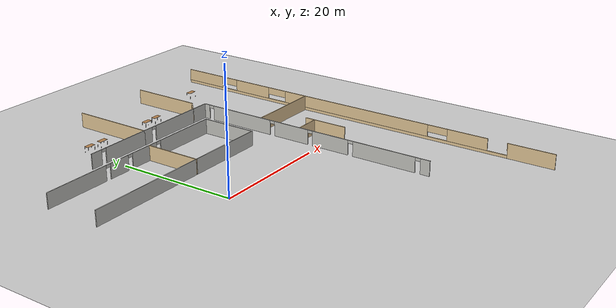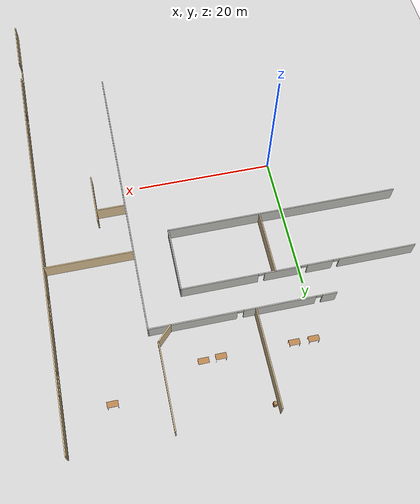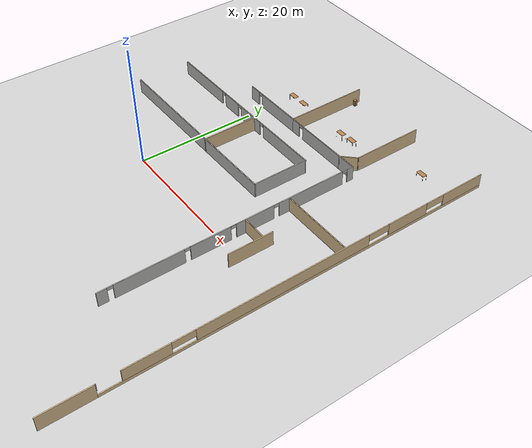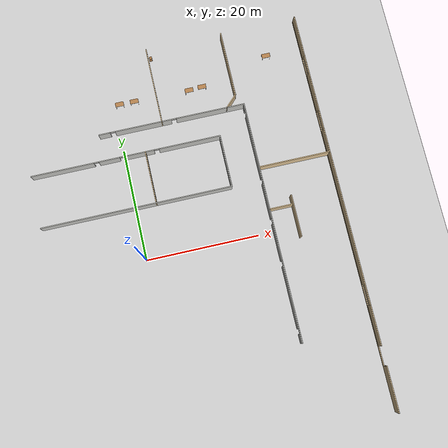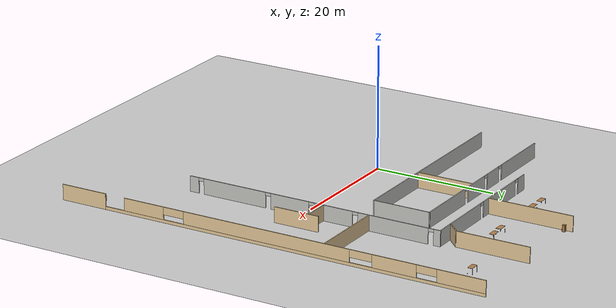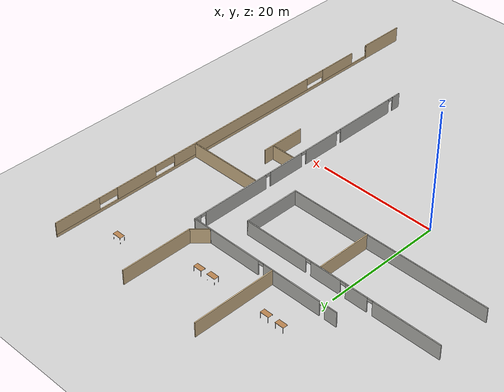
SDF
<sdf version="1.6">
 <world name="default">
  <model name="ground_plane">
   <static>1</static>
   <link name="link">
    <collision name="collision">
     <geometry><plane><normal>0 0 1</normal><size>100 100</size></plane></geometry>
     <surface><friction><ode><mu>100</mu><mu2>50</mu2></ode></friction></surface>
    </collision>
    <visual name="visual">
     <cast_shadows>0</cast_shadows>
     <geometry><plane><normal>0 0 1</normal><size>100 100</size></plane></geometry>
     <material>
      <script><uri>file://media/materials/scripts/gazebo.material</uri><name>Gazebo/Grey</name></script>
     </material>
    </visual>
   </link>
  </model>
  <model name="Building">
   <pose>0.1606 -0.442 0 0 -0 0</pose>
   <link name="Wall_103">
    <collision name="Wall_103_Collision">
     <geometry><box><size>4.25 0.15 2.5</size></box></geometry>
     <pose>0 0 1.25 0 -0 0</pose>
    </collision>
    <visual name="Wall_103_Visual">
     <pose>0 0 1.25 0 -0 0</pose>
     <geometry><box><size>4.25 0.15 2.5</size></box></geometry>
     <material>
      <script><uri>file://media/materials/scripts/gazebo.material</uri><name>Gazebo/Grey</name></script>
      <ambient>0.921569 0.807843 0.615686 1</ambient>
     </material>
     <meta><layer>0</layer></meta>
    </visual>
    <pose>24.6252 4.22124 0 0 -0 0</pose>
   </link>
   <link name="Wall_107">
    <collision name="Wall_107_Collision">
     <geometry><box><size>7.5 0.15 2.5</size></box></geometry>
     <pose>0 0 1.25 0 -0 0</pose>
    </collision>
    <visual name="Wall_107_Visual">
     <pose>0 0 1.25 0 -0 0</pose>
     <geometry><box><size>7.5 0.15 2.5</size></box></geometry>
     <material>
      <script><uri>file://media/materials/scripts/gazebo.material</uri><name>Gazebo/Grey</name></script>
      <ambient>0.921569 0.807843 0.615686 1</ambient>
     </material>
     <meta><layer>0</layer></meta>
    </visual>
    <pose>26.8012 2.14732 0 0 0 -1.5708</pose>
   </link>
   <link name="Wall_15">
    <pose>35.2955 2.175 0 0 -0 1.5708</pose>
    <visual name="Wall_15_Visual_0">
     <pose>-31.881 0 1.25 0 -0 0</pose>
     <geometry><box><size>7.73799 0.15 2.5</size></box></geometry>
     <material>
      <script><uri>file://media/materials/scripts/gazebo.material</uri><name>Gazebo/Grey</name></script>
      <ambient>0.921569 0.807843 0.615686 1</ambient>
     </material>
     <meta><layer>0</layer></meta>
    </visual>
    <collision name="Wall_15_Collision_0">
     <geometry><box><size>7.73799 0.15 2.5</size></box></geometry>
     <pose>-31.881 0 1.25 0 -0 0</pose>
    </collision>
    <visual name="Wall_15_Visual_1">
     <pose>3.869 0 0.25 0 -0 0</pose>
     <geometry><box><size>63.762 0.15 0.5</size></box></geometry>
     <material>
      <script><uri>file://media/materials/scripts/gazebo.material</uri><name>Gazebo/Grey</name></script>
      <ambient>0.921569 0.807843 0.615686 1</ambient>
     </material>
     <meta><layer>0</layer></meta>
    </visual>
    <collision name="Wall_15_Collision_1">
     <geometry><box><size>63.762 0.15 0.5</size></box></geometry>
     <pose>3.869 0 0.25 0 -0 0</pose>
    </collision>
    <visual name="Wall_15_Visual_2">
     <pose>-21.1676 0 1.5 0 -0 0</pose>
     <geometry><box><size>6.97218 0.15 2</size></box></geometry>
     <material>
      <script><uri>file://media/materials/scripts/gazebo.material</uri><name>Gazebo/Grey</name></script>
      <ambient>0.921569 0.807843 0.615686 1</ambient>
     </material>
     <meta><layer>0</layer></meta>
    </visual>
    <collision name="Wall_15_Collision_2">
     <geometry><box><size>6.97218 0.15 2</size></box></geometry>
     <pose>-21.1676 0 1.5 0 -0 0</pose>
    </collision>
    <visual name="Wall_15_Visual_3">
     <pose>-0.106032 0 1.5 0 -0 0</pose>
     <geometry><box><size>28.1209 0.15 2</size></box></geometry>
     <material>
      <script><uri>file://media/materials/scripts/gazebo.material</uri><name>Gazebo/Grey</name></script>
      <ambient>0.921569 0.807843 0.615686 1</ambient>
     </material>
     <meta><layer>0</layer></meta>
    </visual>
    <collision name="Wall_15_Collision_3">
     <geometry><box><size>28.1209 0.15 2</size></box></geometry>
     <pose>-0.106032 0 1.5 0 -0 0</pose>
    </collision>
    <visual name="Wall_15_Visual_4">
     <pose>21.1713 0 1.5 0 -0 0</pose>
     <geometry><box><size>7.19064 0.15 2</size></box></geometry>
     <material>
      <script><uri>file://media/materials/scripts/gazebo.material</uri><name>Gazebo/Grey</name></script>
      <ambient>0.921569 0.807843 0.615686 1</ambient>
     </material>
     <meta><layer>0</layer></meta>
    </visual>
    <collision name="Wall_15_Collision_4">
     <geometry><box><size>7.19064 0.15 2</size></box></geometry>
     <pose>21.1713 0 1.5 0 -0 0</pose>
    </collision>
    <visual name="Wall_15_Visual_5">
     <pose>31.8827 0 1.5 0 -0 0</pose>
     <geometry><box><size>7.73457 0.15 2</size></box></geometry>
     <material>
      <script><uri>file://media/materials/scripts/gazebo.material</uri><name>Gazebo/Grey</name></script>
      <ambient>0.921569 0.807843 0.615686 1</ambient>
     </material>
     <meta><layer>0</layer></meta>
    </visual>
    <collision name="Wall_15_Collision_5">
     <geometry><box><size>7.73457 0.15 2</size></box></geometry>
     <pose>31.8827 0 1.5 0 -0 0</pose>
    </collision>
    <visual name="Wall_15_Visual_6">
     <pose>-27.9687 0 1.9 0 -0 0</pose>
     <geometry><box><size>0.086667 0.15 1.2</size></box></geometry>
     <material>
      <script><uri>file://media/materials/scripts/gazebo.material</uri><name>Gazebo/Grey</name></script>
      <ambient>0.921569 0.807843 0.615686 1</ambient>
     </material>
     <meta><layer>0</layer></meta>
    </visual>
    <collision name="Wall_15_Collision_6">
     <geometry><box><size>0.086667 0.15 1.2</size></box></geometry>
     <pose>-27.9687 0 1.9 0 -0 0</pose>
    </collision>
    <visual name="Wall_15_Visual_7">
     <pose>-15.924 0 1.9 0 -0 0</pose>
     <geometry><box><size>3.51504 0.15 1.2</size></box></geometry>
     <material>
      <script><uri>file://media/materials/scripts/gazebo.material</uri><name>Gazebo/Grey</name></script>
      <ambient>0.921569 0.807843 0.615686 1</ambient>
     </material>
     <meta><layer>0</layer></meta>
    </visual>
    <collision name="Wall_15_Collision_7">
     <geometry><box><size>3.51504 0.15 1.2</size></box></geometry>
     <pose>-15.924 0 1.9 0 -0 0</pose>
    </collision>
    <visual name="Wall_15_Visual_8">
     <pose>15.7652 0 1.9 0 -0 0</pose>
     <geometry><box><size>3.62151 0.15 1.2</size></box></geometry>
     <material>
      <script><uri>file://media/materials/scripts/gazebo.material</uri><name>Gazebo/Grey</name></script>
      <ambient>0.921569 0.807843 0.615686 1</ambient>
     </material>
     <meta><layer>0</layer></meta>
    </visual>
    <collision name="Wall_15_Collision_8">
     <geometry><box><size>3.62151 0.15 1.2</size></box></geometry>
     <pose>15.7652 0 1.9 0 -0 0</pose>
    </collision>
    <visual name="Wall_15_Visual_9">
     <pose>26.391 0 1.9 0 -0 0</pose>
     <geometry><box><size>3.24886 0.15 1.2</size></box></geometry>
     <material>
      <script><uri>file://media/materials/scripts/gazebo.material</uri><name>Gazebo/Grey</name></script>
      <ambient>0.921569 0.807843 0.615686 1</ambient>
     </material>
     <meta><layer>0</layer></meta>
    </visual>
    <collision name="Wall_15_Collision_9">
     <geometry><box><size>3.24886 0.15 1.2</size></box></geometry>
     <pose>26.391 0 1.9 0 -0 0</pose>
    </collision>
   </link>
   <link name="Wall_27">
    <pose>1.91161 23.7463 0 0 -0 0</pose>
    <visual name="Wall_27_Visual_0">
     <pose>-4.71792 0 1.25 0 -0 0</pose>
     <geometry><box><size>2.06417 0.15 2.5</size></box></geometry>
     <material>
      <script><uri>file://media/materials/scripts/gazebo.material</uri><name>Gazebo/CeilingTiled</name></script>
      <ambient>1 1 1 1</ambient>
     </material>
     <meta><layer>0</layer></meta>
    </visual>
    <collision name="Wall_27_Collision_0">
     <geometry><box><size>2.06417 0.15 2.5</size></box></geometry>
     <pose>-4.71792 0 1.25 0 -0 0</pose>
    </collision>
    <visual name="Wall_27_Visual_1">
     <pose>1.48208 0 1.25 0 -0 0</pose>
     <geometry><box><size>8.53583 0.15 2.5</size></box></geometry>
     <material>
      <script><uri>file://media/materials/scripts/gazebo.material</uri><name>Gazebo/CeilingTiled</name></script>
      <ambient>1 1 1 1</ambient>
     </material>
     <meta><layer>0</layer></meta>
    </visual>
    <collision name="Wall_27_Collision_1">
     <geometry><box><size>8.53583 0.15 2.5</size></box></geometry>
     <pose>1.48208 0 1.25 0 -0 0</pose>
    </collision>
    <visual name="Wall_27_Visual_2">
     <pose>-3.23583 0 2.25 0 -0 0</pose>
     <geometry><box><size>0.9 0.15 0.5</size></box></geometry>
     <material>
      <script><uri>file://media/materials/scripts/gazebo.material</uri><name>Gazebo/CeilingTiled</name></script>
      <ambient>1 1 1 1</ambient>
     </material>
     <meta><layer>0</layer></meta>
    </visual>
    <collision name="Wall_27_Collision_2">
     <geometry><box><size>0.9 0.15 0.5</size></box></geometry>
     <pose>-3.23583 0 2.25 0 -0 0</pose>
    </collision>
   </link>
   <link name="Wall_28">
    <collision name="Wall_28_Collision">
     <geometry><box><size>14 0.15 2.5</size></box></geometry>
     <pose>0 0 1.25 0 -0 0</pose>
    </collision>
    <visual name="Wall_28_Visual">
     <pose>0 0 1.25 0 -0 0</pose>
     <geometry><box><size>14 0.15 2.5</size></box></geometry>
     <material>
      <script><uri>file://media/materials/scripts/gazebo.material</uri><name>Gazebo/Grey</name></script>
      <ambient>0.921569 0.807843 0.615686 1</ambient>
     </material>
     <meta><layer>0</layer></meta>
    </visual>
    <pose>7.58661 30.6713 0 0 -0 1.5708</pose>
   </link>
   <link name="Wall_30">
    <pose>13.5116 23.7463 0 0 -0 0</pose>
    <visual name="Wall_30_Visual_0">
     <pose>-5.09853 0 1.25 0 -0 0</pose>
     <geometry><box><size>1.80295 0.15 2.5</size></box></geometry>
     <material>
      <script><uri>file://media/materials/scripts/gazebo.material</uri><name>Gazebo/CeilingTiled</name></script>
      <ambient>1 1 1 1</ambient>
     </material>
     <meta><layer>0</layer></meta>
    </visual>
    <collision name="Wall_30_Collision_0">
     <geometry><box><size>1.80295 0.15 2.5</size></box></geometry>
     <pose>-5.09853 0 1.25 0 -0 0</pose>
    </collision>
    <visual name="Wall_30_Visual_1">
     <pose>1.35147 0 1.25 0 -0 0</pose>
     <geometry><box><size>9.29705 0.15 2.5</size></box></geometry>
     <material>
      <script><uri>file://media/materials/scripts/gazebo.material</uri><name>Gazebo/CeilingTiled</name></script>
      <ambient>1 1 1 1</ambient>
     </material>
     <meta><layer>0</layer></meta>
    </visual>
    <collision name="Wall_30_Collision_1">
     <geometry><box><size>9.29705 0.15 2.5</size></box></geometry>
     <pose>1.35147 0 1.25 0 -0 0</pose>
    </collision>
    <visual name="Wall_30_Visual_2">
     <pose>-3.74705 0 2.25 0 -0 0</pose>
     <geometry><box><size>0.9 0.15 0.5</size></box></geometry>
     <material>
      <script><uri>file://media/materials/scripts/gazebo.material</uri><name>Gazebo/CeilingTiled</name></script>
      <ambient>1 1 1 1</ambient>
     </material>
     <meta><layer>0</layer></meta>
    </visual>
    <collision name="Wall_30_Collision_2">
     <geometry><box><size>0.9 0.15 0.5</size></box></geometry>
     <pose>-3.74705 0 2.25 0 -0 0</pose>
    </collision>
   </link>
   <link name="Wall_31">
    <collision name="Wall_31_Collision">
     <geometry><box><size>3 0.15 2.5</size></box></geometry>
     <pose>0 0 1.25 0 -0 0</pose>
    </collision>
    <visual name="Wall_31_Visual">
     <pose>0 0 1.25 0 -0 0</pose>
     <geometry><box><size>3 0.15 2.5</size></box></geometry>
     <material>
      <script><uri>file://media/materials/scripts/gazebo.material</uri><name>Gazebo/Grey</name></script>
      <ambient>0.921569 0.807843 0.615686 1</ambient>
     </material>
     <meta><layer>0</layer></meta>
    </visual>
    <pose>20.4442 24.754 0 0 -0 0.785398</pose>
   </link>
   <link name="Wall_32">
    <collision name="Wall_32_Collision">
     <geometry><box><size>12 0.15 2.5</size></box></geometry>
     <pose>0 0 1.25 0 -0 0</pose>
    </collision>
    <visual name="Wall_32_Visual">
     <pose>0 0 1.25 0 -0 0</pose>
     <geometry><box><size>12 0.15 2.5</size></box></geometry>
     <material>
      <script><uri>file://media/materials/scripts/gazebo.material</uri><name>Gazebo/Grey</name></script>
      <ambient>0.921569 0.807843 0.615686 1</ambient>
     </material>
     <meta><layer>0</layer></meta>
    </visual>
    <pose>21.4519 31.6866 0 0 -0 1.5708</pose>
   </link>
   <link name="Wall_37">
    <collision name="Wall_37_Collision">
     <geometry><box><size>3.25 0.15 2.5</size></box></geometry>
     <pose>0 0 1.25 0 -0 0</pose>
    </collision>
    <visual name="Wall_37_Visual">
     <pose>0 0 1.25 0 -0 0</pose>
     <geometry><box><size>3.25 0.15 2.5</size></box></geometry>
     <material>
      <script><uri>file://media/materials/scripts/gazebo.material</uri><name>Gazebo/CeilingTiled</name></script>
      <ambient>1 1 1 1</ambient>
     </material>
     <meta><layer>0</layer></meta>
    </visual>
    <pose>20.9866 23.7463 0 0 -0 0</pose>
   </link>
   <link name="Wall_38">
    <pose>22.5366 2.32134 0 0 0 -1.5708</pose>
    <visual name="Wall_38_Visual_0">
     <pose>-20.9301 0 1.25 0 -0 0</pose>
     <geometry><box><size>1.13983 0.15 2.5</size></box></geometry>
     <material>
      <script><uri>file://media/materials/scripts/gazebo.material</uri><name>Gazebo/CeilingTiled</name></script>
      <ambient>1 1 1 1</ambient>
     </material>
     <meta><layer>0</layer></meta>
    </visual>
    <collision name="Wall_38_Collision_0">
     <geometry><box><size>1.13983 0.15 2.5</size></box></geometry>
     <pose>-20.9301 0 1.25 0 -0 0</pose>
    </collision>
    <visual name="Wall_38_Visual_1">
     <pose>-13.5855 0 1.25 0 -0 0</pose>
     <geometry><box><size>11.7493 0.15 2.5</size></box></geometry>
     <material>
      <script><uri>file://media/materials/scripts/gazebo.material</uri><name>Gazebo/CeilingTiled</name></script>
      <ambient>1 1 1 1</ambient>
     </material>
     <meta><layer>0</layer></meta>
    </visual>
    <collision name="Wall_38_Collision_1">
     <geometry><box><size>11.7493 0.15 2.5</size></box></geometry>
     <pose>-13.5855 0 1.25 0 -0 0</pose>
    </collision>
    <visual name="Wall_38_Visual_2">
     <pose>-3.55683 0 1.25 0 -0 0</pose>
     <geometry><box><size>6.50816 0.15 2.5</size></box></geometry>
     <material>
      <script><uri>file://media/materials/scripts/gazebo.material</uri><name>Gazebo/CeilingTiled</name></script>
      <ambient>1 1 1 1</ambient>
     </material>
     <meta><layer>0</layer></meta>
    </visual>
    <collision name="Wall_38_Collision_2">
     <geometry><box><size>6.50816 0.15 2.5</size></box></geometry>
     <pose>-3.55683 0 1.25 0 -0 0</pose>
    </collision>
    <visual name="Wall_38_Visual_3">
     <pose>3.90501 0 1.25 0 -0 0</pose>
     <geometry><box><size>6.61553 0.15 2.5</size></box></geometry>
     <material>
      <script><uri>file://media/materials/scripts/gazebo.material</uri><name>Gazebo/CeilingTiled</name></script>
      <ambient>1 1 1 1</ambient>
     </material>
     <meta><layer>0</layer></meta>
    </visual>
    <collision name="Wall_38_Collision_3">
     <geometry><box><size>6.61553 0.15 2.5</size></box></geometry>
     <pose>3.90501 0 1.25 0 -0 0</pose>
    </collision>
    <visual name="Wall_38_Visual_4">
     <pose>13.5678 0 1.25 0 -0 0</pose>
     <geometry><box><size>10.9101 0.15 2.5</size></box></geometry>
     <material>
      <script><uri>file://media/materials/scripts/gazebo.material</uri><name>Gazebo/CeilingTiled</name></script>
      <ambient>1 1 1 1</ambient>
     </material>
     <meta><layer>0</layer></meta>
    </visual>
    <collision name="Wall_38_Collision_4">
     <geometry><box><size>10.9101 0.15 2.5</size></box></geometry>
     <pose>13.5678 0 1.25 0 -0 0</pose>
    </collision>
    <visual name="Wall_38_Visual_5">
     <pose>20.7114 0 1.25 0 -0 0</pose>
     <geometry><box><size>1.57711 0.15 2.5</size></box></geometry>
     <material>
      <script><uri>file://media/materials/scripts/gazebo.material</uri><name>Gazebo/CeilingTiled</name></script>
      <ambient>1 1 1 1</ambient>
     </material>
     <meta><layer>0</layer></meta>
    </visual>
    <collision name="Wall_38_Collision_5">
     <geometry><box><size>1.57711 0.15 2.5</size></box></geometry>
     <pose>20.7114 0 1.25 0 -0 0</pose>
    </collision>
    <visual name="Wall_38_Visual_6">
     <pose>-19.9102 0 2.25 0 -0 0</pose>
     <geometry><box><size>0.9 0.15 0.5</size></box></geometry>
     <material>
      <script><uri>file://media/materials/scripts/gazebo.material</uri><name>Gazebo/CeilingTiled</name></script>
      <ambient>1 1 1 1</ambient>
     </material>
     <meta><layer>0</layer></meta>
    </visual>
    <collision name="Wall_38_Collision_6">
     <geometry><box><size>0.9 0.15 0.5</size></box></geometry>
     <pose>-19.9102 0 2.25 0 -0 0</pose>
    </collision>
    <visual name="Wall_38_Visual_7">
     <pose>-7.26091 0 2.25 0 -0 0</pose>
     <geometry><box><size>0.9 0.15 0.5</size></box></geometry>
     <material>
      <script><uri>file://media/materials/scripts/gazebo.material</uri><name>Gazebo/CeilingTiled</name></script>
      <ambient>1 1 1 1</ambient>
     </material>
     <meta><layer>0</layer></meta>
    </visual>
    <collision name="Wall_38_Collision_7">
     <geometry><box><size>0.9 0.15 0.5</size></box></geometry>
     <pose>-7.26091 0 2.25 0 -0 0</pose>
    </collision>
    <visual name="Wall_38_Visual_8">
     <pose>0.14725 0 2.25 0 -0 0</pose>
     <geometry><box><size>0.9 0.15 0.5</size></box></geometry>
     <material>
      <script><uri>file://media/materials/scripts/gazebo.material</uri><name>Gazebo/CeilingTiled</name></script>
      <ambient>1 1 1 1</ambient>
     </material>
     <meta><layer>0</layer></meta>
    </visual>
    <collision name="Wall_38_Collision_8">
     <geometry><box><size>0.9 0.15 0.5</size></box></geometry>
     <pose>0.14725 0 2.25 0 -0 0</pose>
    </collision>
    <visual name="Wall_38_Visual_9">
     <pose>7.66278 0 2.25 0 -0 0</pose>
     <geometry><box><size>0.9 0.15 0.5</size></box></geometry>
     <material>
      <script><uri>file://media/materials/scripts/gazebo.material</uri><name>Gazebo/CeilingTiled</name></script>
      <ambient>1 1 1 1</ambient>
     </material>
     <meta><layer>0</layer></meta>
    </visual>
    <collision name="Wall_38_Collision_9">
     <geometry><box><size>0.9 0.15 0.5</size></box></geometry>
     <pose>7.66278 0 2.25 0 -0 0</pose>
    </collision>
    <visual name="Wall_38_Visual_10">
     <pose>19.4729 0 2.25 0 -0 0</pose>
     <geometry><box><size>0.9 0.15 0.5</size></box></geometry>
     <material>
      <script><uri>file://media/materials/scripts/gazebo.material</uri><name>Gazebo/CeilingTiled</name></script>
      <ambient>1 1 1 1</ambient>
     </material>
     <meta><layer>0</layer></meta>
    </visual>
    <collision name="Wall_38_Collision_10">
     <geometry><box><size>0.9 0.15 0.5</size></box></geometry>
     <pose>19.4729 0 2.25 0 -0 0</pose>
    </collision>
   </link>
   <link name="Wall_40">
    <collision name="Wall_40_Collision">
     <geometry><box><size>12.75 0.15 2.5</size></box></geometry>
     <pose>0 0 1.25 0 -0 0</pose>
    </collision>
    <visual name="Wall_40_Visual">
     <pose>0 0 1.25 0 -0 0</pose>
     <geometry><box><size>12.75 0.15 2.5</size></box></geometry>
     <material>
      <script><uri>file://media/materials/scripts/gazebo.material</uri><name>Gazebo/Grey</name></script>
      <ambient>0.921569 0.807843 0.615686 1</ambient>
     </material>
     <meta><layer>0</layer></meta>
    </visual>
    <pose>28.9119 11.9091 0 0 -0 0</pose>
   </link>
   <link name="Wall_72">
    <pose>0.148448 18.9637 0 0 -0 0</pose>
    <visual name="Wall_72_Visual_0">
     <pose>-11.3876 0 1.25 0 -0 0</pose>
     <geometry><box><size>11.2248 0.15 2.5</size></box></geometry>
     <material>
      <script><uri>file://media/materials/scripts/gazebo.material</uri><name>Gazebo/CeilingTiled</name></script>
      <ambient>1 1 1 1</ambient>
     </material>
     <meta><layer>0</layer></meta>
    </visual>
    <collision name="Wall_72_Collision_0">
     <geometry><box><size>11.2248 0.15 2.5</size></box></geometry>
     <pose>-11.3876 0 1.25 0 -0 0</pose>
    </collision>
    <visual name="Wall_72_Visual_1">
     <pose>-3.01671 0 1.25 0 -0 0</pose>
     <geometry><box><size>3.7169 0.15 2.5</size></box></geometry>
     <material>
      <script><uri>file://media/materials/scripts/gazebo.material</uri><name>Gazebo/CeilingTiled</name></script>
      <ambient>1 1 1 1</ambient>
     </material>
     <meta><layer>0</layer></meta>
    </visual>
    <collision name="Wall_72_Collision_1">
     <geometry><box><size>3.7169 0.15 2.5</size></box></geometry>
     <pose>-3.01671 0 1.25 0 -0 0</pose>
    </collision>
    <visual name="Wall_72_Visual_2">
     <pose>2.38294 0 1.25 0 -0 0</pose>
     <geometry><box><size>5.2824 0.15 2.5</size></box></geometry>
     <material>
      <script><uri>file://media/materials/scripts/gazebo.material</uri><name>Gazebo/CeilingTiled</name></script>
      <ambient>1 1 1 1</ambient>
     </material>
     <meta><layer>0</layer></meta>
    </visual>
    <collision name="Wall_72_Collision_2">
     <geometry><box><size>5.2824 0.15 2.5</size></box></geometry>
     <pose>2.38294 0 1.25 0 -0 0</pose>
    </collision>
    <visual name="Wall_72_Visual_3">
     <pose>11.4621 0 1.25 0 -0 0</pose>
     <geometry><box><size>11.0759 0.15 2.5</size></box></geometry>
     <material>
      <script><uri>file://media/materials/scripts/gazebo.material</uri><name>Gazebo/CeilingTiled</name></script>
      <ambient>1 1 1 1</ambient>
     </material>
     <meta><layer>0</layer></meta>
    </visual>
    <collision name="Wall_72_Collision_3">
     <geometry><box><size>11.0759 0.15 2.5</size></box></geometry>
     <pose>11.4621 0 1.25 0 -0 0</pose>
    </collision>
    <visual name="Wall_72_Visual_4">
     <pose>-5.32516 0 2.25 0 -0 0</pose>
     <geometry><box><size>0.9 0.15 0.5</size></box></geometry>
     <material>
      <script><uri>file://media/materials/scripts/gazebo.material</uri><name>Gazebo/CeilingTiled</name></script>
      <ambient>1 1 1 1</ambient>
     </material>
     <meta><layer>0</layer></meta>
    </visual>
    <collision name="Wall_72_Collision_4">
     <geometry><box><size>0.9 0.15 0.5</size></box></geometry>
     <pose>-5.32516 0 2.25 0 -0 0</pose>
    </collision>
    <visual name="Wall_72_Visual_5">
     <pose>-0.708263 0 2.25 0 -0 0</pose>
     <geometry><box><size>0.9 0.15 0.5</size></box></geometry>
     <material>
      <script><uri>file://media/materials/scripts/gazebo.material</uri><name>Gazebo/CeilingTiled</name></script>
      <ambient>1 1 1 1</ambient>
     </material>
     <meta><layer>0</layer></meta>
    </visual>
    <collision name="Wall_72_Collision_5">
     <geometry><box><size>0.9 0.15 0.5</size></box></geometry>
     <pose>-0.708263 0 2.25 0 -0 0</pose>
    </collision>
    <visual name="Wall_72_Visual_6">
     <pose>5.47414 0 2.25 0 -0 0</pose>
     <geometry><box><size>0.9 0.15 0.5</size></box></geometry>
     <material>
      <script><uri>file://media/materials/scripts/gazebo.material</uri><name>Gazebo/CeilingTiled</name></script>
      <ambient>1 1 1 1</ambient>
     </material>
     <meta><layer>0</layer></meta>
    </visual>
    <collision name="Wall_72_Collision_6">
     <geometry><box><size>0.9 0.15 0.5</size></box></geometry>
     <pose>5.47414 0 2.25 0 -0 0</pose>
    </collision>
   </link>
   <link name="Wall_73">
    <collision name="Wall_73_Collision">
     <geometry><box><size>9.5 0.15 2.5</size></box></geometry>
     <pose>0 0 1.25 0 -0 0</pose>
    </collision>
    <visual name="Wall_73_Visual">
     <pose>0 0 1.25 0 -0 0</pose>
     <geometry><box><size>9.5 0.15 2.5</size></box></geometry>
     <material>
      <script><uri>file://media/materials/scripts/gazebo.material</uri><name>Gazebo/CeilingTiled</name></script>
      <ambient>1 1 1 1</ambient>
     </material>
     <meta><layer>0</layer></meta>
    </visual>
    <pose>17.0734 14.2887 0 0 0 -1.5708</pose>
   </link>
   <link name="Wall_74">
    <collision name="Wall_74_Collision">
     <geometry><box><size>34 0.15 2.5</size></box></geometry>
     <pose>0 0 1.25 0 -0 0</pose>
    </collision>
    <visual name="Wall_74_Visual">
     <pose>0 0 1.25 0 -0 0</pose>
     <geometry><box><size>34 0.15 2.5</size></box></geometry>
     <material>
      <script><uri>file://media/materials/scripts/gazebo.material</uri><name>Gazebo/CeilingTiled</name></script>
      <ambient>1 1 1 1</ambient>
     </material>
     <meta><layer>0</layer></meta>
    </visual>
    <pose>0.148448 9.61368 0 0 -0 3.14159</pose>
   </link>
   <link name="Wall_78">
    <collision name="Wall_78_Collision">
     <geometry><box><size>9.5 0.15 2.5</size></box></geometry>
     <pose>0 0 1.25 0 -0 0</pose>
    </collision>
    <visual name="Wall_78_Visual">
     <pose>0 0 1.25 0 -0 0</pose>
     <geometry><box><size>9.5 0.15 2.5</size></box></geometry>
     <material>
      <script><uri>file://media/materials/scripts/gazebo.material</uri><name>Gazebo/Grey</name></script>
      <ambient>0.921569 0.807843 0.615686 1</ambient>
     </material>
     <meta><layer>0</layer></meta>
    </visual>
    <pose>3.60601 14.2765 0 0 0 -1.5708</pose>
   </link>
   <static>1</static>
  </model>
  <model name="table">
   <static>1</static>
   <link name="link">
    <collision name="surface">
     <pose>0 0 1 0 -0 0</pose>
     <geometry><box><size>1.5 0.8 0.03</size></box></geometry>
     <surface><friction><ode><mu>0.6</mu><mu2>0.6</mu2></ode></friction></surface>
    </collision>
    <visual name="visual1">
     <pose>0 0 1 0 -0 0</pose>
     <geometry><box><size>1.5 0.8 0.03</size></box></geometry>
     <material>
      <script><uri>file://media/materials/scripts/gazebo.material</uri><name>Gazebo/Wood</name></script>
     </material>
    </visual>
    <collision name="front_left_leg">
     <pose>0.68 0.38 0.5 0 -0 0</pose>
     <geometry><cylinder><radius>0.02</radius><length>1</length></cylinder></geometry>
    </collision>
    <visual name="front_left_leg">
     <pose>0.68 0.38 0.5 0 -0 0</pose>
     <geometry><cylinder><radius>0.02</radius><length>1</length></cylinder></geometry>
     <material>
      <script><uri>file://media/materials/scripts/gazebo.material</uri><name>Gazebo/Grey</name></script>
     </material>
    </visual>
    <collision name="front_right_leg">
     <pose>0.68 -0.38 0.5 0 -0 0</pose>
     <geometry><cylinder><radius>0.02</radius><length>1</length></cylinder></geometry>
    </collision>
    <visual name="front_right_leg">
     <pose>0.68 -0.38 0.5 0 -0 0</pose>
     <geometry><cylinder><radius>0.02</radius><length>1</length></cylinder></geometry>
     <material>
      <script><uri>file://media/materials/scripts/gazebo.material</uri><name>Gazebo/Grey</name></script>
     </material>
    </visual>
    <collision name="back_right_leg">
     <pose>-0.68 -0.38 0.5 0 -0 0</pose>
     <geometry><cylinder><radius>0.02</radius><length>1</length></cylinder></geometry>
    </collision>
    <visual name="back_right_leg">
     <pose>-0.68 -0.38 0.5 0 -0 0</pose>
     <geometry><cylinder><radius>0.02</radius><length>1</length></cylinder></geometry>
     <material>
      <script><uri>file://media/materials/scripts/gazebo.material</uri><name>Gazebo/Grey</name></script>
     </material>
    </visual>
    <collision name="back_left_leg">
     <pose>-0.68 0.38 0.5 0 -0 0</pose>
     <geometry><cylinder><radius>0.02</radius><length>1</length></cylinder></geometry>
    </collision>
    <visual name="back_left_leg">
     <pose>-0.68 0.38 0.5 0 -0 0</pose>
     <geometry><cylinder><radius>0.02</radius><length>1</length></cylinder></geometry>
     <material>
      <script><uri>file://media/materials/scripts/gazebo.material</uri><name>Gazebo/Grey</name></script>
     </material>
    </visual>
   </link>
   <pose>16.1867 28.6015 0 0 -0 0</pose>
  </model>
  <model name="table_clone">
   <static>1</static>
   <link name="link">
    <collision name="surface">
     <pose>0 0 1 0 -0 0</pose>
     <geometry><box><size>1.5 0.8 0.03</size></box></geometry>
     <surface><friction><ode><mu>0.6</mu><mu2>0.6</mu2></ode></friction></surface>
    </collision>
    <visual name="visual1">
     <pose>0 0 1 0 -0 0</pose>
     <geometry><box><size>1.5 0.8 0.03</size></box></geometry>
     <material>
      <script><uri>file://media/materials/scripts/gazebo.material</uri><name>Gazebo/Wood</name></script>
     </material>
    </visual>
    <collision name="front_left_leg">
     <pose>0.68 0.38 0.5 0 -0 0</pose>
     <geometry><cylinder><radius>0.02</radius><length>1</length></cylinder></geometry>
    </collision>
    <visual name="front_left_leg">
     <pose>0.68 0.38 0.5 0 -0 0</pose>
     <geometry><cylinder><radius>0.02</radius><length>1</length></cylinder></geometry>
     <material>
      <script><uri>file://media/materials/scripts/gazebo.material</uri><name>Gazebo/Grey</name></script>
     </material>
    </visual>
    <collision name="front_right_leg">
     <pose>0.68 -0.38 0.5 0 -0 0</pose>
     <geometry><cylinder><radius>0.02</radius><length>1</length></cylinder></geometry>
    </collision>
    <visual name="front_right_leg">
     <pose>0.68 -0.38 0.5 0 -0 0</pose>
     <geometry><cylinder><radius>0.02</radius><length>1</length></cylinder></geometry>
     <material>
      <script><uri>file://media/materials/scripts/gazebo.material</uri><name>Gazebo/Grey</name></script>
     </material>
    </visual>
    <collision name="back_right_leg">
     <pose>-0.68 -0.38 0.5 0 -0 0</pose>
     <geometry><cylinder><radius>0.02</radius><length>1</length></cylinder></geometry>
    </collision>
    <visual name="back_right_leg">
     <pose>-0.68 -0.38 0.5 0 -0 0</pose>
     <geometry><cylinder><radius>0.02</radius><length>1</length></cylinder></geometry>
     <material>
      <script><uri>file://media/materials/scripts/gazebo.material</uri><name>Gazebo/Grey</name></script>
     </material>
    </visual>
    <collision name="back_left_leg">
     <pose>-0.68 0.38 0.5 0 -0 0</pose>
     <geometry><cylinder><radius>0.02</radius><length>1</length></cylinder></geometry>
    </collision>
    <visual name="back_left_leg">
     <pose>-0.68 0.38 0.5 0 -0 0</pose>
     <geometry><cylinder><radius>0.02</radius><length>1</length></cylinder></geometry>
     <material>
      <script><uri>file://media/materials/scripts/gazebo.material</uri><name>Gazebo/Grey</name></script>
     </material>
    </visual>
   </link>
   <pose>13.7665 28.4598 0 0 -0 0</pose>
  </model>
  <model name="table_clone_0">
   <static>1</static>
   <link name="link">
    <collision name="surface">
     <pose>0 0 1 0 -0 0</pose>
     <geometry><box><size>1.5 0.8 0.03</size></box></geometry>
     <surface><friction><ode><mu>0.6</mu><mu2>0.6</mu2></ode></friction></surface>
    </collision>
    <visual name="visual1">
     <pose>0 0 1 0 -0 0</pose>
     <geometry><box><size>1.5 0.8 0.03</size></box></geometry>
     <material>
      <script><uri>file://media/materials/scripts/gazebo.material</uri><name>Gazebo/Wood</name></script>
     </material>
    </visual>
    <collision name="front_left_leg">
     <pose>0.68 0.38 0.5 0 -0 0</pose>
     <geometry><cylinder><radius>0.02</radius><length>1</length></cylinder></geometry>
    </collision>
    <visual name="front_left_leg">
     <pose>0.68 0.38 0.5 0 -0 0</pose>
     <geometry><cylinder><radius>0.02</radius><length>1</length></cylinder></geometry>
     <material>
      <script><uri>file://media/materials/scripts/gazebo.material</uri><name>Gazebo/Grey</name></script>
     </material>
    </visual>
    <collision name="front_right_leg">
     <pose>0.68 -0.38 0.5 0 -0 0</pose>
     <geometry><cylinder><radius>0.02</radius><length>1</length></cylinder></geometry>
    </collision>
    <visual name="front_right_leg">
     <pose>0.68 -0.38 0.5 0 -0 0</pose>
     <geometry><cylinder><radius>0.02</radius><length>1</length></cylinder></geometry>
     <material>
      <script><uri>file://media/materials/scripts/gazebo.material</uri><name>Gazebo/Grey</name></script>
     </material>
    </visual>
    <collision name="back_right_leg">
     <pose>-0.68 -0.38 0.5 0 -0 0</pose>
     <geometry><cylinder><radius>0.02</radius><length>1</length></cylinder></geometry>
    </collision>
    <visual name="back_right_leg">
     <pose>-0.68 -0.38 0.5 0 -0 0</pose>
     <geometry><cylinder><radius>0.02</radius><length>1</length></cylinder></geometry>
     <material>
      <script><uri>file://media/materials/scripts/gazebo.material</uri><name>Gazebo/Grey</name></script>
     </material>
    </visual>
    <collision name="back_left_leg">
     <pose>-0.68 0.38 0.5 0 -0 0</pose>
     <geometry><cylinder><radius>0.02</radius><length>1</length></cylinder></geometry>
    </collision>
    <visual name="back_left_leg">
     <pose>-0.68 0.38 0.5 0 -0 0</pose>
     <geometry><cylinder><radius>0.02</radius><length>1</length></cylinder></geometry>
     <material>
      <script><uri>file://media/materials/scripts/gazebo.material</uri><name>Gazebo/Grey</name></script>
     </material>
    </visual>
   </link>
   <pose>3.66236 28.5699 0 0 -0 0</pose>
  </model>
  <model name="table_clone_1">
   <static>1</static>
   <link name="link">
    <collision name="surface">
     <pose>0 0 1 0 -0 0</pose>
     <geometry><box><size>1.5 0.8 0.03</size></box></geometry>
     <surface><friction><ode><mu>0.6</mu><mu2>0.6</mu2></ode></friction></surface>
    </collision>
    <visual name="visual1">
     <pose>0 0 1 0 -0 0</pose>
     <geometry><box><size>1.5 0.8 0.03</size></box></geometry>
     <material>
      <script><uri>file://media/materials/scripts/gazebo.material</uri><name>Gazebo/Wood</name></script>
     </material>
    </visual>
    <collision name="front_left_leg">
     <pose>0.68 0.38 0.5 0 -0 0</pose>
     <geometry><cylinder><radius>0.02</radius><length>1</length></cylinder></geometry>
    </collision>
    <visual name="front_left_leg">
     <pose>0.68 0.38 0.5 0 -0 0</pose>
     <geometry><cylinder><radius>0.02</radius><length>1</length></cylinder></geometry>
     <material>
      <script><uri>file://media/materials/scripts/gazebo.material</uri><name>Gazebo/Grey</name></script>
     </material>
    </visual>
    <collision name="front_right_leg">
     <pose>0.68 -0.38 0.5 0 -0 0</pose>
     <geometry><cylinder><radius>0.02</radius><length>1</length></cylinder></geometry>
    </collision>
    <visual name="front_right_leg">
     <pose>0.68 -0.38 0.5 0 -0 0</pose>
     <geometry><cylinder><radius>0.02</radius><length>1</length></cylinder></geometry>
     <material>
      <script><uri>file://media/materials/scripts/gazebo.material</uri><name>Gazebo/Grey</name></script>
     </material>
    </visual>
    <collision name="back_right_leg">
     <pose>-0.68 -0.38 0.5 0 -0 0</pose>
     <geometry><cylinder><radius>0.02</radius><length>1</length></cylinder></geometry>
    </collision>
    <visual name="back_right_leg">
     <pose>-0.68 -0.38 0.5 0 -0 0</pose>
     <geometry><cylinder><radius>0.02</radius><length>1</length></cylinder></geometry>
     <material>
      <script><uri>file://media/materials/scripts/gazebo.material</uri><name>Gazebo/Grey</name></script>
     </material>
    </visual>
    <collision name="back_left_leg">
     <pose>-0.68 0.38 0.5 0 -0 0</pose>
     <geometry><cylinder><radius>0.02</radius><length>1</length></cylinder></geometry>
    </collision>
    <visual name="back_left_leg">
     <pose>-0.68 0.38 0.5 0 -0 0</pose>
     <geometry><cylinder><radius>0.02</radius><length>1</length></cylinder></geometry>
     <material>
      <script><uri>file://media/materials/scripts/gazebo.material</uri><name>Gazebo/Grey</name></script>
     </material>
    </visual>
   </link>
   <pose>0.972334 28.5959 0 0 -0 0</pose>
  </model>
  <model name="table_clone_16">
   <static>1</static>
   <link name="link">
    <collision name="surface">
     <pose>0 0 1 0 -0 0</pose>
     <geometry><box><size>1.5 0.8 0.03</size></box></geometry>
     <surface><friction><ode><mu>0.6</mu><mu2>0.6</mu2></ode></friction></surface>
    </collision>
    <visual name="visual1">
     <pose>0 0 1 0 -0 0</pose>
     <geometry><box><size>1.5 0.8 0.03</size></box></geometry>
     <material>
      <script><uri>file://media/materials/scripts/gazebo.material</uri><name>Gazebo/Wood</name></script>
     </material>
    </visual>
    <collision name="front_left_leg">
     <pose>0.68 0.38 0.5 0 -0 0</pose>
     <geometry><cylinder><radius>0.02</radius><length>1</length></cylinder></geometry>
    </collision>
    <visual name="front_left_leg">
     <pose>0.68 0.38 0.5 0 -0 0</pose>
     <geometry><cylinder><radius>0.02</radius><length>1</length></cylinder></geometry>
     <material>
      <script><uri>file://media/materials/scripts/gazebo.material</uri><name>Gazebo/Grey</name></script>
     </material>
    </visual>
    <collision name="front_right_leg">
     <pose>0.68 -0.38 0.5 0 -0 0</pose>
     <geometry><cylinder><radius>0.02</radius><length>1</length></cylinder></geometry>
    </collision>
    <visual name="front_right_leg">
     <pose>0.68 -0.38 0.5 0 -0 0</pose>
     <geometry><cylinder><radius>0.02</radius><length>1</length></cylinder></geometry>
     <material>
      <script><uri>file://media/materials/scripts/gazebo.material</uri><name>Gazebo/Grey</name></script>
     </material>
    </visual>
    <collision name="back_right_leg">
     <pose>-0.68 -0.38 0.5 0 -0 0</pose>
     <geometry><cylinder><radius>0.02</radius><length>1</length></cylinder></geometry>
    </collision>
    <visual name="back_right_leg">
     <pose>-0.68 -0.38 0.5 0 -0 0</pose>
     <geometry><cylinder><radius>0.02</radius><length>1</length></cylinder></geometry>
     <material>
      <script><uri>file://media/materials/scripts/gazebo.material</uri><name>Gazebo/Grey</name></script>
     </material>
    </visual>
    <collision name="back_left_leg">
     <pose>-0.68 0.38 0.5 0 -0 0</pose>
     <geometry><cylinder><radius>0.02</radius><length>1</length></cylinder></geometry>
    </collision>
    <visual name="back_left_leg">
     <pose>-0.68 0.38 0.5 0 -0 0</pose>
     <geometry><cylinder><radius>0.02</radius><length>1</length></cylinder></geometry>
     <material>
      <script><uri>file://media/materials/scripts/gazebo.material</uri><name>Gazebo/Grey</name></script>
     </material>
    </visual>
   </link>
   <pose>28.8909 31.8432 0 0 -0 0</pose>
  </model>
  <model name="cabinet_clone_4">
   <static>1</static>
   <link name="cabinet_bottom_plate">
    <inertial>
     <pose>0 0 -1 0 -0 0</pose>
     <inertia><ixx>2.05</ixx><ixy>0</ixy><ixz>0</ixz><iyy>2.05</iyy><iyz>0</iyz><izz>2.05</izz></inertia>
     <mass>25</mass>
    </inertial>
    <collision name="cabinet_bottom_plate_geom">
     <pose>0 0 0.01 0 -0 0</pose>
     <geometry><box><size>0.45 0.45 0.02</size></box></geometry>
    </collision>
    <visual name="cabinet_bottom_plate_geom_visual">
     <pose>0 0 0.01 0 -0 0</pose>
     <geometry><box><size>0.45 0.45 0.02</size></box></geometry>
     <material>
      <script><uri>file://media/materials/scripts/gazebo.material</uri><name>Gazebo/Wood</name></script>
     </material>
    </visual>
    <collision name="cabinet_bottom_plate_geom_cabinet_back_plate">
     <pose>0.235 0 0.51 0 -0 0</pose>
     <geometry><box><size>0.02 0.45 1.02</size></box></geometry>
    </collision>
    <visual name="cabinet_bottom_plate_geom_cabinet_back_plate_visual">
     <pose>0.235 0 0.51 0 -0 0</pose>
     <geometry><box><size>0.02 0.45 1.02</size></box></geometry>
     <material>
      <script><uri>file://media/materials/scripts/gazebo.material</uri><name>Gazebo/Wood</name></script>
     </material>
    </visual>
    <collision name="cabinet_bottom_plate_geom_cabinet_left_plate">
     <pose>0 0.235 0.51 0 -0 0</pose>
     <geometry><box><size>0.45 0.02 1.02</size></box></geometry>
    </collision>
    <visual name="cabinet_bottom_plate_geom_cabinet_left_plate_visual">
     <pose>0 0.235 0.51 0 -0 0</pose>
     <geometry><box><size>0.45 0.02 1.02</size></box></geometry>
     <material>
      <script><uri>file://media/materials/scripts/gazebo.material</uri><name>Gazebo/Wood</name></script>
     </material>
    </visual>
    <collision name="cabinet_bottom_plate_geom_cabinet_middle_plate">
     <pose>0 0 0.51 0 -0 0</pose>
     <geometry><box><size>0.45 0.45 0.02</size></box></geometry>
    </collision>
    <visual name="cabinet_bottom_plate_geom_cabinet_middle_plate_visual">
     <pose>0 0 0.51 0 -0 0</pose>
     <geometry><box><size>0.45 0.45 0.02</size></box></geometry>
     <material>
      <script><uri>file://media/materials/scripts/gazebo.material</uri><name>Gazebo/Wood</name></script>
     </material>
    </visual>
    <collision name="cabinet_bottom_plate_geom_cabinet_right_plate">
     <pose>0 -0.235 0.51 0 -0 0</pose>
     <geometry><box><size>0.45 0.02 1.02</size></box></geometry>
    </collision>
    <visual name="cabinet_bottom_plate_geom_cabinet_right_plate_visual">
     <pose>0 -0.235 0.51 0 -0 0</pose>
     <geometry><box><size>0.45 0.02 1.02</size></box></geometry>
     <material>
      <script><uri>file://media/materials/scripts/gazebo.material</uri><name>Gazebo/Wood</name></script>
     </material>
    </visual>
    <collision name="cabinet_bottom_plate_geom_cabinet_top_plate">
     <pose>0 0 1.01 0 -0 0</pose>
     <geometry><box><size>0.45 0.45 0.02</size></box></geometry>
    </collision>
    <visual name="cabinet_bottom_plate_geom_cabinet_top_plate_visual">
     <pose>0 0 1.01 0 -0 0</pose>
     <geometry><box><size>0.45 0.45 0.02</size></box></geometry>
     <material>
      <script><uri>file://media/materials/scripts/gazebo.material</uri><name>Gazebo/Wood</name></script>
     </material>
    </visual>
   </link>
   <pose>8.23521 36.0148 0 0 -0 0</pose>
  </model>
 </world>
</sdf>
